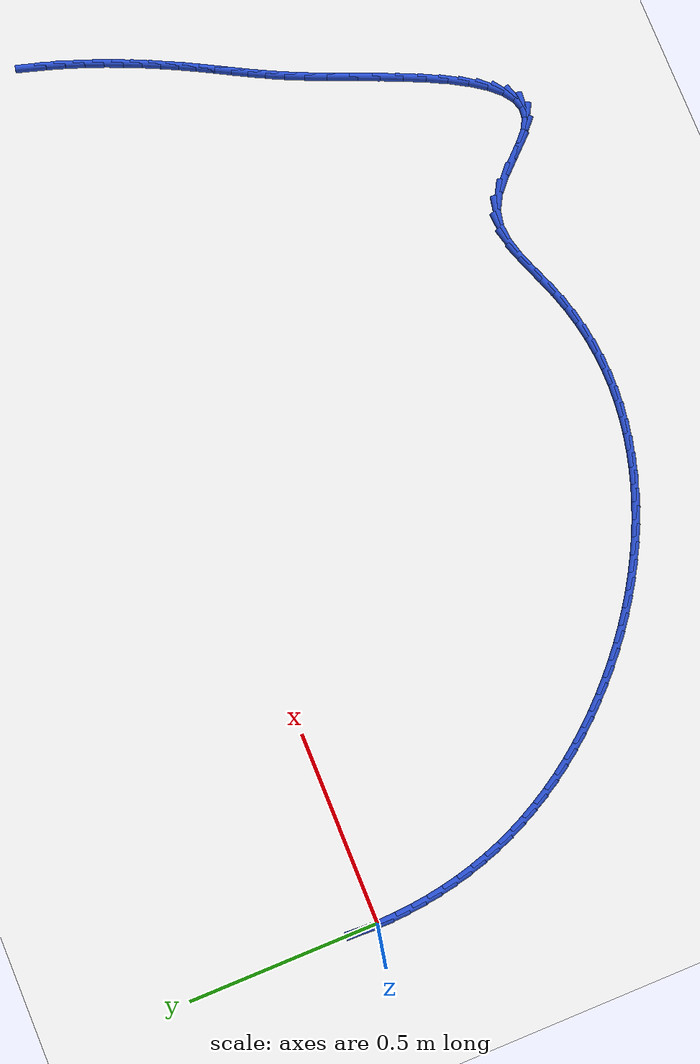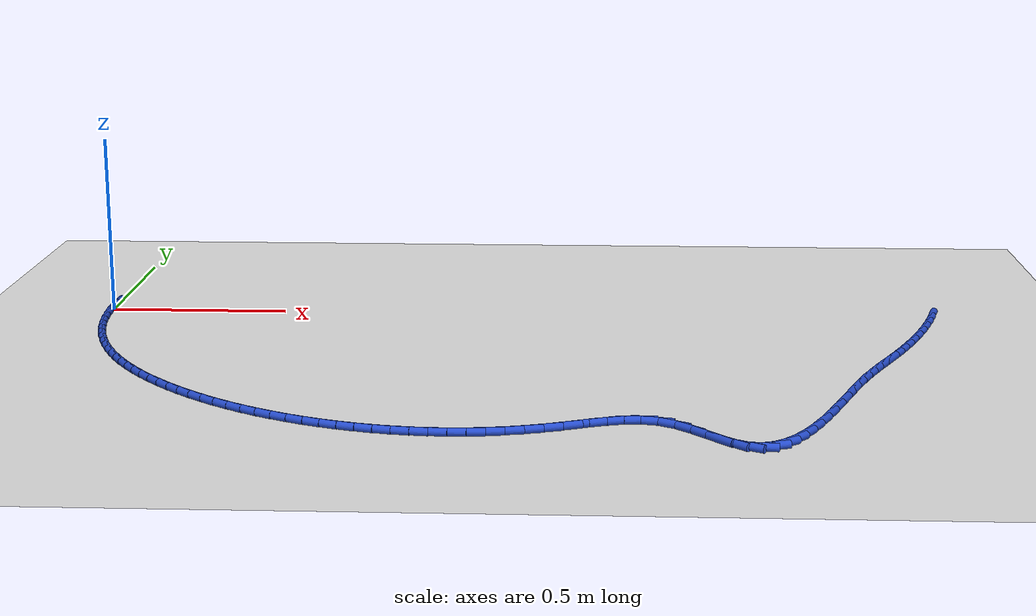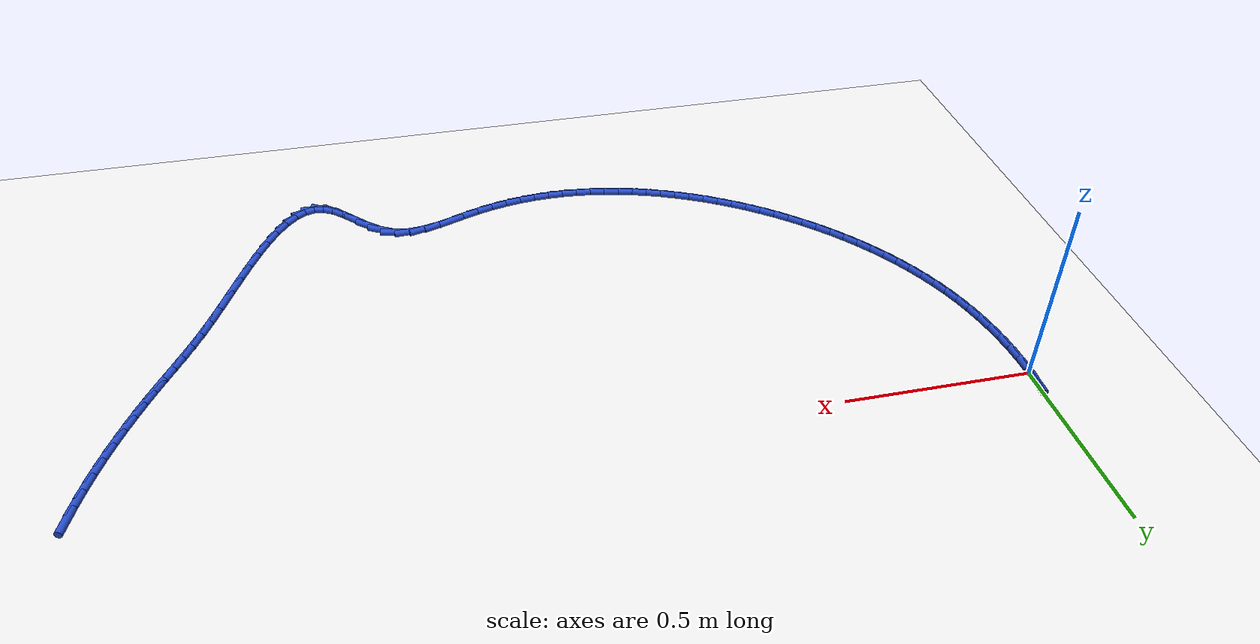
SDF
<sdf version="1.6">
 <world name="default">
  <model name="ground_plane">
   <static>1</static>
   <link name="link">
    <collision name="collision">
     <geometry><plane><normal>0 0 1</normal><size>100 100</size></plane></geometry>
     <surface><friction><ode><mu>100</mu><mu2>50</mu2></ode></friction></surface>
    </collision>
    <visual name="visual">
     <cast_shadows>0</cast_shadows>
     <geometry><plane><normal>0 0 1</normal><size>100 100</size></plane></geometry>
     <material>
      <script><uri>file://media/materials/scripts/gazebo.material</uri><name>Gazebo/WhiteGlow</name></script>
     </material>
    </visual>
   </link>
  </model>
  <model name="line">
   <link name="link_0">
    <pose>9.540979117872439e-18 -2.7755575615628914e-17 0.01 0 1.57 1.5550834401233358</pose>
    <collision name="collision">
     <geometry><cylinder><radius>0.01</radius><length>0.08</length></cylinder></geometry>
    </collision>
    <visual name="visual">
     <material>
      <script><name>Gazebo/Blue</name><uri>file://media/materials/scripts/gazebo.material</uri></script>
     </material>
     <geometry><cylinder><radius>0.01</radius><length>0.08</length></cylinder></geometry>
    </visual>
   </link>
   <link name="link_1">
    <pose>0.0007071253182191439 0.04499918677267556 0.01 0 1.57 1.5118088330511579</pose>
    <collision name="collision">
     <geometry><cylinder><radius>0.01</radius><length>0.08</length></cylinder></geometry>
    </collision>
    <visual name="visual">
     <material>
      <script><name>Gazebo/Blue</name><uri>file://media/materials/scripts/gazebo.material</uri></script>
     </material>
     <geometry><cylinder><radius>0.01</radius><length>0.08</length></cylinder></geometry>
    </visual>
   </link>
   <link name="link_88">
    <pose>2.3586757964761906 0.005335245022934011 0.01 0 1.57 1.2836216635699964</pose>
    <collision name="collision">
     <geometry><cylinder><radius>0.01</radius><length>0.08</length></cylinder></geometry>
    </collision>
    <visual name="visual">
     <material>
      <script><name>Gazebo/Blue</name><uri>file://media/materials/scripts/gazebo.material</uri></script>
     </material>
     <geometry><cylinder><radius>0.01</radius><length>0.08</length></cylinder></geometry>
    </visual>
   </link>
   <link name="link_89">
    <pose>2.344400832170204 -0.0429990133191447 0.01 0 1.57 1.252128991660815</pose>
    <collision name="collision">
     <geometry><cylinder><radius>0.01</radius><length>0.08</length></cylinder></geometry>
    </collision>
    <visual name="visual">
     <material>
      <script><name>Gazebo/Blue</name><uri>file://media/materials/scripts/gazebo.material</uri></script>
     </material>
     <geometry><cylinder><radius>0.01</radius><length>0.08</length></cylinder></geometry>
    </visual>
   </link>
   <link name="link_90">
    <pose>2.3285816671289457 -0.09094880310375003 0.01 0 1.57 1.22361754299838</pose>
    <collision name="collision">
     <geometry><cylinder><radius>0.01</radius><length>0.08</length></cylinder></geometry>
    </collision>
    <visual name="visual">
     <material>
      <script><name>Gazebo/Blue</name><uri>file://media/materials/scripts/gazebo.material</uri></script>
     </material>
     <geometry><cylinder><radius>0.01</radius><length>0.08</length></cylinder></geometry>
    </visual>
   </link>
   <link name="link_91">
    <pose>2.311451877210317 -0.13829028961050666 0.01 0 1.57 1.1976682334905395</pose>
    <collision name="collision">
     <geometry><cylinder><radius>0.01</radius><length>0.08</length></cylinder></geometry>
    </collision>
    <visual name="visual">
     <material>
      <script><name>Gazebo/Blue</name><uri>file://media/materials/scripts/gazebo.material</uri></script>
     </material>
     <geometry><cylinder><radius>0.01</radius><length>0.08</length></cylinder></geometry>
    </visual>
   </link>
   <link name="link_92">
    <pose>2.2932450382722225 -0.18479963811903863 0.01 0 1.57 1.1739186129750017</pose>
    <collision name="collision">
     <geometry><cylinder><radius>0.01</radius><length>0.08</length></cylinder></geometry>
    </collision>
    <visual name="visual">
     <material>
      <script><name>Gazebo/Blue</name><uri>file://media/materials/scripts/gazebo.material</uri></script>
     </material>
     <geometry><cylinder><radius>0.01</radius><length>0.08</length></cylinder></geometry>
    </visual>
   </link>
   <link name="link_93">
    <pose>2.2741947261725666 -0.2302530139089699 0.01 0 1.57 1.152052027311546</pose>
    <collision name="collision">
     <geometry><cylinder><radius>0.01</radius><length>0.08</length></cylinder></geometry>
    </collision>
    <visual name="visual">
     <material>
      <script><name>Gazebo/Blue</name><uri>file://media/materials/scripts/gazebo.material</uri></script>
     </material>
     <geometry><cylinder><radius>0.01</radius><length>0.08</length></cylinder></geometry>
    </visual>
   </link>
   <link name="link_94">
    <pose>2.254534516769252 -0.27442658225992533 0.01 0 1.57 1.131787435719408</pose>
    <collision name="collision">
     <geometry><cylinder><radius>0.01</radius><length>0.08</length></cylinder></geometry>
    </collision>
    <visual name="visual">
     <material>
      <script><name>Gazebo/Blue</name><uri>file://media/materials/scripts/gazebo.material</uri></script>
     </material>
     <geometry><cylinder><radius>0.01</radius><length>0.08</length></cylinder></geometry>
    </visual>
   </link>
   <link name="link_95">
    <pose>2.2344979859201826 -0.3170965084515271 0.01 0 1.57 1.1128695308786785</pose>
    <collision name="collision">
     <geometry><cylinder><radius>0.01</radius><length>0.08</length></cylinder></geometry>
    </collision>
    <visual name="visual">
     <material>
      <script><name>Gazebo/Blue</name><uri>file://media/materials/scripts/gazebo.material</uri></script>
     </material>
     <geometry><cylinder><radius>0.01</radius><length>0.08</length></cylinder></geometry>
    </visual>
   </link>
   <link name="link_96">
    <pose>2.214318709483262 -0.35803895776339995 0.01 0 1.57 1.0951727227376198</pose>
    <collision name="collision">
     <geometry><cylinder><radius>0.01</radius><length>0.08</length></cylinder></geometry>
    </collision>
    <visual name="visual">
     <material>
      <script><name>Gazebo/Blue</name><uri>file://media/materials/scripts/gazebo.material</uri></script>
     </material>
     <geometry><cylinder><radius>0.01</radius><length>0.08</length></cylinder></geometry>
    </visual>
   </link>
   <link name="link_97">
    <pose>2.1942235146462377 -0.39705414003828693 0.01 0 1.57 1.0815811158116941</pose>
    <collision name="collision">
     <geometry><cylinder><radius>0.01</radius><length>0.08</length></cylinder></geometry>
    </collision>
    <visual name="visual">
     <material>
      <script><name>Gazebo/Blue</name><uri>file://media/materials/scripts/gazebo.material</uri></script>
     </material>
     <geometry><cylinder><radius>0.01</radius><length>0.08</length></cylinder></geometry>
    </visual>
   </link>
   <link name="link_98">
    <pose>2.17427668631938 -0.4345213804053726 0.01 0 1.57 1.0761063480815933</pose>
    <collision name="collision">
     <geometry><cylinder><radius>0.01</radius><length>0.08</length></cylinder></geometry>
    </collision>
    <visual name="visual">
     <material>
      <script><name>Gazebo/Blue</name><uri>file://media/materials/scripts/gazebo.material</uri></script>
     </material>
     <geometry><cylinder><radius>0.01</radius><length>0.08</length></cylinder></geometry>
    </visual>
   </link>
   <link name="link_99">
    <pose>2.154375791689177 -0.47141399580852 0.01 0 1.57 1.079549148450456</pose>
    <collision name="collision">
     <geometry><cylinder><radius>0.01</radius><length>0.08</length></cylinder></geometry>
    </collision>
    <visual name="visual">
     <material>
      <script><name>Gazebo/Blue</name><uri>file://media/materials/scripts/gazebo.material</uri></script>
     </material>
     <geometry><cylinder><radius>0.01</radius><length>0.08</length></cylinder></geometry>
    </visual>
   </link>
   <link name="link_100">
    <pose>2.1344108140142874 -0.5087323236604061 0.01 0 1.57 1.0914395599258968</pose>
    <collision name="collision">
     <geometry><cylinder><radius>0.01</radius><length>0.08</length></cylinder></geometry>
    </collision>
    <visual name="visual">
     <material>
      <script><name>Gazebo/Blue</name><uri>file://media/materials/scripts/gazebo.material</uri></script>
     </material>
     <geometry><cylinder><radius>0.01</radius><length>0.08</length></cylinder></geometry>
    </visual>
   </link>
   <link name="link_101">
    <pose>2.1142717365533645 -0.5474767013737093 0.01 0 1.57 1.1103052088640963</pose>
    <collision name="collision">
     <geometry><cylinder><radius>0.01</radius><length>0.08</length></cylinder></geometry>
    </collision>
    <visual name="visual">
     <material>
      <script><name>Gazebo/Blue</name><uri>file://media/materials/scripts/gazebo.material</uri></script>
     </material>
     <geometry><cylinder><radius>0.01</radius><length>0.08</length></cylinder></geometry>
    </visual>
   </link>
   <link name="link_102">
    <pose>2.0938485425650675 -0.5886474663611084 0.01 0 1.57 1.1340740611851818</pose>
    <collision name="collision">
     <geometry><cylinder><radius>0.01</radius><length>0.08</length></cylinder></geometry>
    </collision>
    <visual name="visual">
     <material>
      <script><name>Gazebo/Blue</name><uri>file://media/materials/scripts/gazebo.material</uri></script>
     </material>
     <geometry><cylinder><radius>0.01</radius><length>0.08</length></cylinder></geometry>
    </visual>
   </link>
   <link name="link_103">
    <pose>2.07303121530805 -0.6332449560352809 0.01 0 1.57 1.1592076805965748</pose>
    <collision name="collision">
     <geometry><cylinder><radius>0.01</radius><length>0.08</length></cylinder></geometry>
    </collision>
    <visual name="visual">
     <material>
      <script><name>Gazebo/Blue</name><uri>file://media/materials/scripts/gazebo.material</uri></script>
     </material>
     <geometry><cylinder><radius>0.01</radius><length>0.08</length></cylinder></geometry>
    </visual>
   </link>
   <link name="link_104">
    <pose>2.0517171080607213 -0.6820721478011329 0.01 0 1.57 1.175214959926384</pose>
    <collision name="collision">
     <geometry><cylinder><radius>0.01</radius><length>0.08</length></cylinder></geometry>
    </collision>
    <visual name="visual">
     <material>
      <script><name>Gazebo/Blue</name><uri>file://media/materials/scripts/gazebo.material</uri></script>
     </material>
     <geometry><cylinder><radius>0.01</radius><length>0.08</length></cylinder></geometry>
    </visual>
   </link>
   <link name="link_105">
    <pose>2.0298603419196395 -0.7344118471497724 0.01 0 1.57 1.1800782403941363</pose>
    <collision name="collision">
     <geometry><cylinder><radius>0.01</radius><length>0.08</length></cylinder></geometry>
    </collision>
    <visual name="visual">
     <material>
      <script><name>Gazebo/Blue</name><uri>file://media/materials/scripts/gazebo.material</uri></script>
     </material>
     <geometry><cylinder><radius>0.01</radius><length>0.08</length></cylinder></geometry>
    </visual>
   </link>
   <link name="link_106">
    <pose>2.0074414096894606 -0.788840657867224 0.01 0 1.57 1.1752934486480389</pose>
    <collision name="collision">
     <geometry><cylinder><radius>0.01</radius><length>0.08</length></cylinder></geometry>
    </collision>
    <visual name="visual">
     <material>
      <script><name>Gazebo/Blue</name><uri>file://media/materials/scripts/gazebo.material</uri></script>
     </material>
     <geometry><cylinder><radius>0.01</radius><length>0.08</length></cylinder></geometry>
    </visual>
   </link>
   <link name="link_107">
    <pose>1.9844409498078148 -0.8439312838687203 0.01 0 1.57 1.1609520055146196</pose>
    <collision name="collision">
     <geometry><cylinder><radius>0.01</radius><length>0.08</length></cylinder></geometry>
    </collision>
    <visual name="visual">
     <material>
      <script><name>Gazebo/Blue</name><uri>file://media/materials/scripts/gazebo.material</uri></script>
     </material>
     <geometry><cylinder><radius>0.01</radius><length>0.08</length></cylinder></geometry>
    </visual>
   </link>
   <link name="link_108">
    <pose>1.960839600712333 -0.8982564290694939 0.01 0 1.57 1.1358533674712168</pose>
    <collision name="collision">
     <geometry><cylinder><radius>0.01</radius><length>0.08</length></cylinder></geometry>
    </collision>
    <visual name="visual">
     <material>
      <script><name>Gazebo/Blue</name><uri>file://media/materials/scripts/gazebo.material</uri></script>
     </material>
     <geometry><cylinder><radius>0.01</radius><length>0.08</length></cylinder></geometry>
    </visual>
   </link>
   <link name="link_109">
    <pose>1.9366180008406446 -0.9503887973847767 0.01 0 1.57 1.097220659832309</pose>
    <collision name="collision">
     <geometry><cylinder><radius>0.01</radius><length>0.08</length></cylinder></geometry>
    </collision>
    <visual name="visual">
     <material>
      <script><name>Gazebo/Blue</name><uri>file://media/materials/scripts/gazebo.material</uri></script>
     </material>
     <geometry><cylinder><radius>0.01</radius><length>0.08</length></cylinder></geometry>
    </visual>
   </link>
   <link name="link_110">
    <pose>1.9117567886303801 -0.9989010927298025 0.01 0 1.57 1.0398831380043618</pose>
    <collision name="collision">
     <geometry><cylinder><radius>0.01</radius><length>0.08</length></cylinder></geometry>
    </collision>
    <visual name="visual">
     <material>
      <script><name>Gazebo/Blue</name><uri>file://media/materials/scripts/gazebo.material</uri></script>
     </material>
     <geometry><cylinder><radius>0.01</radius><length>0.08</length></cylinder></geometry>
    </visual>
   </link>
   <link name="link_111">
    <pose>1.8862366025191704 -1.0423660190198016 0.01 0 1.57 0.9545518382829045</pose>
    <collision name="collision">
     <geometry><cylinder><radius>0.01</radius><length>0.08</length></cylinder></geometry>
    </collision>
    <visual name="visual">
     <material>
      <script><name>Gazebo/Blue</name><uri>file://media/materials/scripts/gazebo.material</uri></script>
     </material>
     <geometry><cylinder><radius>0.01</radius><length>0.08</length></cylinder></geometry>
    </visual>
   </link>
   <link name="link_112">
    <pose>1.8600380809446448 -1.0793562801700072 0.01 0 1.57 0.8245333058964786</pose>
    <collision name="collision">
     <geometry><cylinder><radius>0.01</radius><length>0.08</length></cylinder></geometry>
    </collision>
    <visual name="visual">
     <material>
      <script><name>Gazebo/Blue</name><uri>file://media/materials/scripts/gazebo.material</uri></script>
     </material>
     <geometry><cylinder><radius>0.01</radius><length>0.08</length></cylinder></geometry>
    </visual>
   </link>
   <link name="link_113">
    <pose>1.833141862344434 -1.1084445800956524 0.01 0 1.57 0.6210948208969689</pose>
    <collision name="collision">
     <geometry><cylinder><radius>0.01</radius><length>0.08</length></cylinder></geometry>
    </collision>
    <visual name="visual">
     <material>
      <script><name>Gazebo/Blue</name><uri>file://media/materials/scripts/gazebo.material</uri></script>
     </material>
     <geometry><cylinder><radius>0.01</radius><length>0.08</length></cylinder></geometry>
    </visual>
   </link>
   <link name="link_114">
    <pose>1.8055285851561684 -1.1282036227119694 0.01 0 1.57 0.3074803152077454</pose>
    <collision name="collision">
     <geometry><cylinder><radius>0.01</radius><length>0.08</length></cylinder></geometry>
    </collision>
    <visual name="visual">
     <material>
      <script><name>Gazebo/Blue</name><uri>file://media/materials/scripts/gazebo.material</uri></script>
     </material>
     <geometry><cylinder><radius>0.01</radius><length>0.08</length></cylinder></geometry>
    </visual>
   </link>
   <link name="link_115">
    <pose>1.7771788878174772 -1.13720611193419 0.01 0 1.57 -0.10887230418914469</pose>
    <collision name="collision">
     <geometry><cylinder><radius>0.01</radius><length>0.08</length></cylinder></geometry>
    </collision>
    <visual name="visual">
     <material>
      <script><name>Gazebo/Blue</name><uri>file://media/materials/scripts/gazebo.material</uri></script>
     </material>
     <geometry><cylinder><radius>0.01</radius><length>0.08</length></cylinder></geometry>
    </visual>
   </link>
   <link name="link_116">
    <pose>1.748073408765992 -1.134024751677547 0.01 0 1.57 -0.5076331139860487</pose>
    <collision name="collision">
     <geometry><cylinder><radius>0.01</radius><length>0.08</length></cylinder></geometry>
    </collision>
    <visual name="visual">
     <material>
      <script><name>Gazebo/Blue</name><uri>file://media/materials/scripts/gazebo.material</uri></script>
     </material>
     <geometry><cylinder><radius>0.01</radius><length>0.08</length></cylinder></geometry>
    </visual>
   </link>
   <link name="link_117">
    <pose>1.7181851686681446 -1.1173992574431226 0.01 0 1.57 -0.7367854710851709</pose>
    <collision name="collision">
     <geometry><cylinder><radius>0.01</radius><length>0.08</length></cylinder></geometry>
    </collision>
    <visual name="visual">
     <material>
      <script><name>Gazebo/Blue</name><uri>file://media/materials/scripts/gazebo.material</uri></script>
     </material>
     <geometry><cylinder><radius>0.01</radius><length>0.08</length></cylinder></geometry>
    </visual>
   </link>
   <link name="link_118">
    <pose>1.6873347503976759 -1.0894113822968092 0.01 0 1.57 -0.8162944459647538</pose>
    <collision name="collision">
     <geometry><cylinder><radius>0.01</radius><length>0.08</length></cylinder></geometry>
    </collision>
    <visual name="visual">
     <material>
      <script><name>Gazebo/Blue</name><uri>file://media/materials/scripts/gazebo.material</uri></script>
     </material>
     <geometry><cylinder><radius>0.01</radius><length>0.08</length></cylinder></geometry>
    </visual>
   </link>
   <link name="link_119">
    <pose>1.6552019692937066 -1.0552290587898774 0.01 0 1.57 -0.8050443434836526</pose>
    <collision name="collision">
     <geometry><cylinder><radius>0.01</radius><length>0.08</length></cylinder></geometry>
    </collision>
    <visual name="visual">
     <material>
      <script><name>Gazebo/Blue</name><uri>file://media/materials/scripts/gazebo.material</uri></script>
     </material>
     <geometry><cylinder><radius>0.01</radius><length>0.08</length></cylinder></geometry>
    </visual>
   </link>
   <link name="link_120">
    <pose>1.621461361618239 -1.0201359576624107 0.01 0 1.57 -0.710925760095772</pose>
    <collision name="collision">
     <geometry><cylinder><radius>0.01</radius><length>0.08</length></cylinder></geometry>
    </collision>
    <visual name="visual">
     <material>
      <script><name>Gazebo/Blue</name><uri>file://media/materials/scripts/gazebo.material</uri></script>
     </material>
     <geometry><cylinder><radius>0.01</radius><length>0.08</length></cylinder></geometry>
    </visual>
   </link>
   <link name="link_121">
    <pose>1.5857874636332754 -0.9894157496544939 0.01 0 1.57 -0.5069071161262191</pose>
    <collision name="collision">
     <geometry><cylinder><radius>0.01</radius><length>0.08</length></cylinder></geometry>
    </collision>
    <visual name="visual">
     <material>
      <script><name>Gazebo/Blue</name><uri>file://media/materials/scripts/gazebo.material</uri></script>
     </material>
     <geometry><cylinder><radius>0.01</radius><length>0.08</length></cylinder></geometry>
    </visual>
   </link>
   <link name="link_122">
    <pose>1.547854862654067 -0.9683515819845179 0.01 0 1.57 -0.1922941177773128</pose>
    <collision name="collision">
     <geometry><cylinder><radius>0.01</radius><length>0.08</length></cylinder></geometry>
    </collision>
    <visual name="visual">
     <material>
      <script><name>Gazebo/Blue</name><uri>file://media/materials/scripts/gazebo.material</uri></script>
     </material>
     <geometry><cylinder><radius>0.01</radius><length>0.08</length></cylinder></geometry>
    </visual>
   </link>
   <link name="link_123">
    <pose>1.5075069274967796 -0.9604958445800025 0.01 0 1.57 0.07817731863065544</pose>
    <collision name="collision">
     <geometry><cylinder><radius>0.01</radius><length>0.08</length></cylinder></geometry>
    </collision>
    <visual name="visual">
     <material>
      <script><name>Gazebo/Blue</name><uri>file://media/materials/scripts/gazebo.material</uri></script>
     </material>
     <geometry><cylinder><radius>0.01</radius><length>0.08</length></cylinder></geometry>
    </visual>
   </link>
   <link name="link_124">
    <pose>1.4651317222945277 -0.9638153899370432 0.01 0 1.57 0.25269919657112283</pose>
    <collision name="collision">
     <geometry><cylinder><radius>0.01</radius><length>0.08</length></cylinder></geometry>
    </collision>
    <visual name="visual">
     <material>
      <script><name>Gazebo/Blue</name><uri>file://media/materials/scripts/gazebo.material</uri></script>
     </material>
     <geometry><cylinder><radius>0.01</radius><length>0.08</length></cylinder></geometry>
    </visual>
   </link>
   <link name="link_125">
    <pose>1.4212269847136811 -0.9751524314990997 0.01 0 1.57 0.3459416472000235</pose>
    <collision name="collision">
     <geometry><cylinder><radius>0.01</radius><length>0.08</length></cylinder></geometry>
    </collision>
    <visual name="visual">
     <material>
      <script><name>Gazebo/Blue</name><uri>file://media/materials/scripts/gazebo.material</uri></script>
     </material>
     <geometry><cylinder><radius>0.01</radius><length>0.08</length></cylinder></geometry>
    </visual>
   </link>
   <link name="link_126">
    <pose>1.376290452420607 -0.9913491827096295 0.01 0 1.57 0.3750046065148913</pose>
    <collision name="collision">
     <geometry><cylinder><radius>0.01</radius><length>0.08</length></cylinder></geometry>
    </collision>
    <visual name="visual">
     <material>
      <script><name>Gazebo/Blue</name><uri>file://media/materials/scripts/gazebo.material</uri></script>
     </material>
     <geometry><cylinder><radius>0.01</radius><length>0.08</length></cylinder></geometry>
    </visual>
   </link>
   <link name="link_127">
    <pose>1.3308198630816765 -1.009247857012092 0.01 0 1.57 0.34781542419087935</pose>
    <collision name="collision">
     <geometry><cylinder><radius>0.01</radius><length>0.08</length></cylinder></geometry>
    </collision>
    <visual name="visual">
     <material>
      <script><name>Gazebo/Blue</name><uri>file://media/materials/scripts/gazebo.material</uri></script>
     </material>
     <geometry><cylinder><radius>0.01</radius><length>0.08</length></cylinder></geometry>
    </visual>
   </link>
   <link name="link_128">
    <pose>1.285304015192878 -1.025749846237337 0.01 0 1.57 0.2900699863198498</pose>
    <collision name="collision">
     <geometry><cylinder><radius>0.01</radius><length>0.08</length></cylinder></geometry>
    </collision>
    <visual name="visual">
     <material>
      <script><name>Gazebo/Blue</name><uri>file://media/materials/scripts/gazebo.material</uri></script>
     </material>
     <geometry><cylinder><radius>0.01</radius><length>0.08</length></cylinder></geometry>
    </visual>
   </link>
   <link name="link_129">
    <pose>1.2400028276651585 -1.039271752708278 0.01 0 1.57 0.2302499941510786</pose>
    <collision name="collision">
     <geometry><cylinder><radius>0.01</radius><length>0.08</length></cylinder></geometry>
    </collision>
    <visual name="visual">
     <material>
      <script><name>Gazebo/Blue</name><uri>file://media/materials/scripts/gazebo.material</uri></script>
     </material>
     <geometry><cylinder><radius>0.01</radius><length>0.08</length></cylinder></geometry>
    </visual>
   </link>
   <link name="link_130">
    <pose>1.1949336078128656 -1.0498362968146573 0.01 0 1.57 0.17025188518578221</pose>
    <collision name="collision">
     <geometry><cylinder><radius>0.01</radius><length>0.08</length></cylinder></geometry>
    </collision>
    <visual name="visual">
     <material>
      <script><name>Gazebo/Blue</name><uri>file://media/materials/scripts/gazebo.material</uri></script>
     </material>
     <geometry><cylinder><radius>0.01</radius><length>0.08</length></cylinder></geometry>
    </visual>
   </link>
   <link name="link_131">
    <pose>1.150101974454506 -1.0575435782001659 0.01 0 1.57 0.11056524913342555</pose>
    <collision name="collision">
     <geometry><cylinder><radius>0.01</radius><length>0.08</length></cylinder></geometry>
    </collision>
    <visual name="visual">
     <material>
      <script><name>Gazebo/Blue</name><uri>file://media/materials/scripts/gazebo.material</uri></script>
     </material>
     <geometry><cylinder><radius>0.01</radius><length>0.08</length></cylinder></geometry>
    </visual>
   </link>
   <link name="link_132">
    <pose>1.1055135464085863 -1.0624936965084941 0.01 0 1.57 0.05166969651844424</pose>
    <collision name="collision">
     <geometry><cylinder><radius>0.01</radius><length>0.08</length></cylinder></geometry>
    </collision>
    <visual name="visual">
     <material>
      <script><name>Gazebo/Blue</name><uri>file://media/materials/scripts/gazebo.material</uri></script>
     </material>
     <geometry><cylinder><radius>0.01</radius><length>0.08</length></cylinder></geometry>
    </visual>
   </link>
   <link name="link_133">
    <pose>1.0611739424936135 -1.0647867513833336 0.01 0 1.57 -0.00598627195045169</pose>
    <collision name="collision">
     <geometry><cylinder><radius>0.01</radius><length>0.08</length></cylinder></geometry>
    </collision>
    <visual name="visual">
     <material>
      <script><name>Gazebo/Blue</name><uri>file://media/materials/scripts/gazebo.material</uri></script>
     </material>
     <geometry><cylinder><radius>0.01</radius><length>0.08</length></cylinder></geometry>
    </visual>
   </link>
   <link name="link_134">
    <pose>1.0170887815280936 -1.0645228424683753 0.01 0 1.57 -0.06200295418543772</pose>
    <collision name="collision">
     <geometry><cylinder><radius>0.01</radius><length>0.08</length></cylinder></geometry>
    </collision>
    <visual name="visual">
     <material>
      <script><name>Gazebo/Blue</name><uri>file://media/materials/scripts/gazebo.material</uri></script>
     </material>
     <geometry><cylinder><radius>0.01</radius><length>0.08</length></cylinder></geometry>
    </visual>
   </link>
   <link name="link_135">
    <pose>0.9732636823305332 -1.0618020694073107 0.01 0 1.57 -0.11604209281798042</pose>
    <collision name="collision">
     <geometry><cylinder><radius>0.01</radius><length>0.08</length></cylinder></geometry>
    </collision>
    <visual name="visual">
     <material>
      <script><name>Gazebo/Blue</name><uri>file://media/materials/scripts/gazebo.material</uri></script>
     </material>
     <geometry><cylinder><radius>0.01</radius><length>0.08</length></cylinder></geometry>
    </visual>
   </link>
   <link name="link_136">
    <pose>0.9297042637194378 -1.05672453184383 0.01 0 1.57 -0.16783378851136307</pose>
    <collision name="collision">
     <geometry><cylinder><radius>0.01</radius><length>0.08</length></cylinder></geometry>
    </collision>
    <visual name="visual">
     <material>
      <script><name>Gazebo/Blue</name><uri>file://media/materials/scripts/gazebo.material</uri></script>
     </material>
     <geometry><cylinder><radius>0.01</radius><length>0.08</length></cylinder></geometry>
    </visual>
   </link>
   <link name="link_137">
    <pose>0.8864161445133155 -1.0493903294216247 0.01 0 1.57 -0.2172127889429104</pose>
    <collision name="collision">
     <geometry><cylinder><radius>0.01</radius><length>0.08</length></cylinder></geometry>
    </collision>
    <visual name="visual">
     <material>
      <script><name>Gazebo/Blue</name><uri>file://media/materials/scripts/gazebo.material</uri></script>
     </material>
     <geometry><cylinder><radius>0.01</radius><length>0.08</length></cylinder></geometry>
    </visual>
   </link>
   <link name="link_138">
    <pose>0.8434072776040783 -1.0398985026121863 0.01 0 1.57 -0.2645844963397612</pose>
    <collision name="collision">
     <geometry><cylinder><radius>0.01</radius><length>0.08</length></cylinder></geometry>
    </collision>
    <visual name="visual">
     <material>
      <script><name>Gazebo/Blue</name><uri>file://media/materials/scripts/gazebo.material</uri></script>
     </material>
     <geometry><cylinder><radius>0.01</radius><length>0.08</length></cylinder></geometry>
    </visual>
   </link>
   <link name="link_139">
    <pose>0.800719348427887 -1.0283327844964982 0.01 0 1.57 -0.3103763805216823</pose>
    <collision name="collision">
     <geometry><cylinder><radius>0.01</radius><length>0.08</length></cylinder></geometry>
    </collision>
    <visual name="visual">
     <material>
      <script><name>Gazebo/Blue</name><uri>file://media/materials/scripts/gazebo.material</uri></script>
     </material>
     <geometry><cylinder><radius>0.01</radius><length>0.08</length></cylinder></geometry>
    </visual>
   </link>
   <link name="link_140">
    <pose>0.7584194132913415 -1.0147653951840212 0.01 0 1.57 -0.354689788335446</pose>
    <collision name="collision">
     <geometry><cylinder><radius>0.01</radius><length>0.08</length></cylinder></geometry>
    </collision>
    <visual name="visual">
     <material>
      <script><name>Gazebo/Blue</name><uri>file://media/materials/scripts/gazebo.material</uri></script>
     </material>
     <geometry><cylinder><radius>0.01</radius><length>0.08</length></cylinder></geometry>
    </visual>
   </link>
   <link name="link_141">
    <pose>0.7165751475841282 -0.9992682738523517 0.01 0 1.57 -0.3976306123874729</pose>
    <collision name="collision">
     <geometry><cylinder><radius>0.01</radius><length>0.08</length></cylinder></geometry>
    </collision>
    <visual name="visual">
     <material>
      <script><name>Gazebo/Blue</name><uri>file://media/materials/scripts/gazebo.material</uri></script>
     </material>
     <geometry><cylinder><radius>0.01</radius><length>0.08</length></cylinder></geometry>
    </visual>
   </link>
   <link name="link_142">
    <pose>0.6752542266959327 -0.981913359679085 0.01 0 1.57 -0.4393149258305776</pose>
    <collision name="collision">
     <geometry><cylinder><radius>0.01</radius><length>0.08</length></cylinder></geometry>
    </collision>
    <visual name="visual">
     <material>
      <script><name>Gazebo/Blue</name><uri>file://media/materials/scripts/gazebo.material</uri></script>
     </material>
     <geometry><cylinder><radius>0.01</radius><length>0.08</length></cylinder></geometry>
    </visual>
   </link>
   <link name="link_143">
    <pose>0.6345243260164426 -0.9627725918418181 0.01 0 1.57 -0.4798660554002749</pose>
    <collision name="collision">
     <geometry><cylinder><radius>0.01</radius><length>0.08</length></cylinder></geometry>
    </collision>
    <visual name="visual">
     <material>
      <script><name>Gazebo/Blue</name><uri>file://media/materials/scripts/gazebo.material</uri></script>
     </material>
     <geometry><cylinder><radius>0.01</radius><length>0.08</length></cylinder></geometry>
    </visual>
   </link>
   <link name="link_144">
    <pose>0.5944531209353435 -0.9419179095181467 0.01 0 1.57 -0.5194123072626243</pose>
    <collision name="collision">
     <geometry><cylinder><radius>0.01</radius><length>0.08</length></cylinder></geometry>
    </collision>
    <visual name="visual">
     <material>
      <script><name>Gazebo/Blue</name><uri>file://media/materials/scripts/gazebo.material</uri></script>
     </material>
     <geometry><cylinder><radius>0.01</radius><length>0.08</length></cylinder></geometry>
    </visual>
   </link>
   <link name="link_145">
    <pose>0.5551082868423219 -0.9194212518856667 0.01 0 1.57 -0.5580852775460803</pose>
    <collision name="collision">
     <geometry><cylinder><radius>0.01</radius><length>0.08</length></cylinder></geometry>
    </collision>
    <visual name="visual">
     <material>
      <script><name>Gazebo/Blue</name><uri>file://media/materials/scripts/gazebo.material</uri></script>
     </material>
     <geometry><cylinder><radius>0.01</radius><length>0.08</length></cylinder></geometry>
    </visual>
   </link>
   <link name="link_146">
    <pose>0.5165574991270642 -0.8953545581219747 0.01 0 1.57 -0.5960186685964389</pose>
    <collision name="collision">
     <geometry><cylinder><radius>0.01</radius><length>0.08</length></cylinder></geometry>
    </collision>
    <visual name="visual">
     <material>
      <script><name>Gazebo/Blue</name><uri>file://media/materials/scripts/gazebo.material</uri></script>
     </material>
     <geometry><cylinder><radius>0.01</radius><length>0.08</length></cylinder></geometry>
    </visual>
   </link>
   <link name="link_147">
    <pose>0.4788684331792553 -0.8697897674046655 0.01 0 1.57 -0.6333475304598913</pose>
    <collision name="collision">
     <geometry><cylinder><radius>0.01</radius><length>0.08</length></cylinder></geometry>
    </collision>
    <visual name="visual">
     <material>
      <script><name>Gazebo/Blue</name><uri>file://media/materials/scripts/gazebo.material</uri></script>
     </material>
     <geometry><cylinder><radius>0.01</radius><length>0.08</length></cylinder></geometry>
    </visual>
   </link>
   <link name="link_148">
    <pose>0.44210876438858354 -0.8427988189113368 0.01 0 1.57 -0.6702078510841295</pose>
    <collision name="collision">
     <geometry><cylinder><radius>0.01</radius><length>0.08</length></cylinder></geometry>
    </collision>
    <visual name="visual">
     <material>
      <script><name>Gazebo/Blue</name><uri>file://media/materials/scripts/gazebo.material</uri></script>
     </material>
     <geometry><cylinder><radius>0.01</radius><length>0.08</length></cylinder></geometry>
    </visual>
   </link>
   <link name="link_149">
    <pose>0.4063461681447343 -0.814453651819584 0.01 0 1.57 -0.7067364253834683</pose>
    <collision name="collision">
     <geometry><cylinder><radius>0.01</radius><length>0.08</length></cylinder></geometry>
    </collision>
    <visual name="visual">
     <material>
      <script><name>Gazebo/Blue</name><uri>file://media/materials/scripts/gazebo.material</uri></script>
     </material>
     <geometry><cylinder><radius>0.01</radius><length>0.08</length></cylinder></geometry>
    </visual>
   </link>
   <link name="link_150">
    <pose>0.3716483198373938 -0.7848262053070031 0.01 0 1.57 -0.7430709406189794</pose>
    <collision name="collision">
     <geometry><cylinder><radius>0.01</radius><length>0.08</length></cylinder></geometry>
    </collision>
    <visual name="visual">
     <material>
      <script><name>Gazebo/Blue</name><uri>file://media/materials/scripts/gazebo.material</uri></script>
     </material>
     <geometry><cylinder><radius>0.01</radius><length>0.08</length></cylinder></geometry>
    </visual>
   </link>
   <link name="link_151">
    <pose>0.3380828948562485 -0.7539884185511903 0.01 0 1.57 -0.7793502221149875</pose>
    <collision name="collision">
     <geometry><cylinder><radius>0.01</radius><length>0.08</length></cylinder></geometry>
    </collision>
    <visual name="visual">
     <material>
      <script><name>Gazebo/Blue</name><uri>file://media/materials/scripts/gazebo.material</uri></script>
     </material>
     <geometry><cylinder><radius>0.01</radius><length>0.08</length></cylinder></geometry>
    </visual>
   </link>
   <link name="link_152">
    <pose>0.3057175685909845 -0.7220122307297415 0.01 0 1.57 -0.8157145882430757</pose>
    <collision name="collision">
     <geometry><cylinder><radius>0.01</radius><length>0.08</length></cylinder></geometry>
    </collision>
    <visual name="visual">
     <material>
      <script><name>Gazebo/Blue</name><uri>file://media/materials/scripts/gazebo.material</uri></script>
     </material>
     <geometry><cylinder><radius>0.01</radius><length>0.08</length></cylinder></geometry>
    </visual>
   </link>
   <link name="link_153">
    <pose>0.27462001643128764 -0.6889695810202523 0.01 0 1.57 -0.8523285863948651</pose>
    <collision name="collision">
     <geometry><cylinder><radius>0.01</radius><length>0.08</length></cylinder></geometry>
    </collision>
    <visual name="visual">
     <material>
      <script><name>Gazebo/Blue</name><uri>file://media/materials/scripts/gazebo.material</uri></script>
     </material>
     <geometry><cylinder><radius>0.01</radius><length>0.08</length></cylinder></geometry>
    </visual>
   </link>
   <link name="link_154">
    <pose>0.24485797236484633 -0.6549309424417827 0.01 0 1.57 -0.8897337396380558</pose>
    <collision name="collision">
     <geometry><cylinder><radius>0.01</radius><length>0.08</length></cylinder></geometry>
    </collision>
    <visual name="visual">
     <material>
      <script><name>Gazebo/Blue</name><uri>file://media/materials/scripts/gazebo.material</uri></script>
     </material>
     <geometry><cylinder><radius>0.01</radius><length>0.08</length></cylinder></geometry>
    </visual>
   </link>
   <link name="link_155">
    <pose>0.21650025793792255 -0.6199395766193836 0.01 0 1.57 -0.9283656251054418</pose>
    <collision name="collision">
     <geometry><cylinder><radius>0.01</radius><length>0.08</length></cylinder></geometry>
    </collision>
    <visual name="visual">
     <material>
      <script><name>Gazebo/Blue</name><uri>file://media/materials/scripts/gazebo.material</uri></script>
     </material>
     <geometry><cylinder><radius>0.01</radius><length>0.08</length></cylinder></geometry>
    </visual>
   </link>
   <link name="link_156">
    <pose>0.18961665476516218 -0.5840147236682474 0.01 0 1.57 -0.9682836092752466</pose>
    <collision name="collision">
     <geometry><cylinder><radius>0.01</radius><length>0.08</length></cylinder></geometry>
    </collision>
    <visual name="visual">
     <material>
      <script><name>Gazebo/Blue</name><uri>file://media/materials/scripts/gazebo.material</uri></script>
     </material>
     <geometry><cylinder><radius>0.01</radius><length>0.08</length></cylinder></geometry>
    </visual>
   </link>
   <link name="link_157">
    <pose>0.16427697743684322 -0.5471747986326763 0.01 0 1.57 -1.0095227609310535</pose>
    <collision name="collision">
     <geometry><cylinder><radius>0.01</radius><length>0.08</length></cylinder></geometry>
    </collision>
    <visual name="visual">
     <material>
      <script><name>Gazebo/Blue</name><uri>file://media/materials/scripts/gazebo.material</uri></script>
     </material>
     <geometry><cylinder><radius>0.01</radius><length>0.08</length></cylinder></geometry>
    </visual>
   </link>
   <link name="link_158">
    <pose>0.1405510405432432 -0.5094382165569709 0.01 0 1.57 -1.0521038675251917</pose>
    <collision name="collision">
     <geometry><cylinder><radius>0.01</radius><length>0.08</length></cylinder></geometry>
    </collision>
    <visual name="visual">
     <material>
      <script><name>Gazebo/Blue</name><uri>file://media/materials/scripts/gazebo.material</uri></script>
     </material>
     <geometry><cylinder><radius>0.01</radius><length>0.08</length></cylinder></geometry>
    </visual>
   </link>
   <link name="link_159">
    <pose>0.11850865867464107 -0.47082339248543426 0.01 0 1.57 -1.0960307536422815</pose>
    <collision name="collision">
     <geometry><cylinder><radius>0.01</radius><length>0.08</length></cylinder></geometry>
    </collision>
    <visual name="visual">
     <material>
      <script><name>Gazebo/Blue</name><uri>file://media/materials/scripts/gazebo.material</uri></script>
     </material>
     <geometry><cylinder><radius>0.01</radius><length>0.08</length></cylinder></geometry>
    </visual>
   </link>
   <link name="link_160">
    <pose>0.09821964642131446 -0.43134874146236735 0.01 0 1.57 -1.1412875854462197</pose>
    <collision name="collision">
     <geometry><cylinder><radius>0.01</radius><length>0.08</length></cylinder></geometry>
    </collision>
    <visual name="visual">
     <material>
      <script><name>Gazebo/Blue</name><uri>file://media/materials/scripts/gazebo.material</uri></script>
     </material>
     <geometry><cylinder><radius>0.01</radius><length>0.08</length></cylinder></geometry>
    </visual>
   </link>
   <link name="link_161">
    <pose>0.07975381837354137 -0.3910326785320716 0.01 0 1.57 -1.187828895075791</pose>
    <collision name="collision">
     <geometry><cylinder><radius>0.01</radius><length>0.08</length></cylinder></geometry>
    </collision>
    <visual name="visual">
     <material>
      <script><name>Gazebo/Blue</name><uri>file://media/materials/scripts/gazebo.material</uri></script>
     </material>
     <geometry><cylinder><radius>0.01</radius><length>0.08</length></cylinder></geometry>
    </visual>
   </link>
   <link name="link_162">
    <pose>0.06318073072175871 -0.3498938594701129 0.01 0 1.57 -1.2348893807966823</pose>
    <collision name="collision">
     <geometry><cylinder><radius>0.01</radius><length>0.08</length></cylinder></geometry>
    </collision>
    <visual name="visual">
     <material>
      <script><name>Gazebo/Blue</name><uri>file://media/materials/scripts/gazebo.material</uri></script>
     </material>
     <geometry><cylinder><radius>0.01</radius><length>0.08</length></cylinder></geometry>
    </visual>
   </link>
   <link name="link_163">
    <pose>0.048544972394158316 -0.3079742001305943 0.01 0 1.57 -1.2811836321601968</pose>
    <collision name="collision">
     <geometry><cylinder><radius>0.01</radius><length>0.08</length></cylinder></geometry>
    </collision>
    <visual name="visual">
     <material>
      <script><name>Gazebo/Blue</name><uri>file://media/materials/scripts/gazebo.material</uri></script>
     </material>
     <geometry><cylinder><radius>0.01</radius><length>0.08</length></cylinder></geometry>
    </visual>
   </link>
   <link name="link_164">
    <pose>0.03584570731764877 -0.2653579353486583 0.01 0 1.57 -1.326636854341042</pose>
    <collision name="collision">
     <geometry><cylinder><radius>0.01</radius><length>0.08</length></cylinder></geometry>
    </collision>
    <visual name="visual">
     <material>
      <script><name>Gazebo/Blue</name><uri>file://media/materials/scripts/gazebo.material</uri></script>
     </material>
     <geometry><cylinder><radius>0.01</radius><length>0.08</length></cylinder></geometry>
    </visual>
   </link>
   <link name="link_165">
    <pose>0.02507728415059596 -0.22213378597490677 0.01 0 1.57 -1.3713228550975172</pose>
    <collision name="collision">
     <geometry><cylinder><radius>0.01</radius><length>0.08</length></cylinder></geometry>
    </collision>
    <visual name="visual">
     <material>
      <script><name>Gazebo/Blue</name><uri>file://media/materials/scripts/gazebo.material</uri></script>
     </material>
     <geometry><cylinder><radius>0.01</radius><length>0.08</length></cylinder></geometry>
    </visual>
   </link>
   <link name="link_166">
    <pose>0.016234051551366094 -0.17839047285994197 0.01 0 1.57 -1.4153235332090688</pose>
    <collision name="collision">
     <geometry><cylinder><radius>0.01</radius><length>0.08</length></cylinder></geometry>
    </collision>
    <visual name="visual">
     <material>
      <script><name>Gazebo/Blue</name><uri>file://media/materials/scripts/gazebo.material</uri></script>
     </material>
     <geometry><cylinder><radius>0.01</radius><length>0.08</length></cylinder></geometry>
    </visual>
   </link>
   <link name="link_167">
    <pose>0.009310358178325368 -0.13421671685436648 0.01 0 1.57 -1.458727119352608</pose>
    <collision name="collision">
     <geometry><cylinder><radius>0.01</radius><length>0.08</length></cylinder></geometry>
    </collision>
    <visual name="visual">
     <material>
      <script><name>Gazebo/Blue</name><uri>file://media/materials/scripts/gazebo.material</uri></script>
     </material>
     <geometry><cylinder><radius>0.01</radius><length>0.08</length></cylinder></geometry>
    </visual>
   </link>
   <link name="link_168">
    <pose>0.0043005526898399 -0.08970123880878199 0.01 0 1.57 -1.501626656679884</pose>
    <collision name="collision">
     <geometry><cylinder><radius>0.01</radius><length>0.08</length></cylinder></geometry>
    </collision>
    <visual name="visual">
     <material>
      <script><name>Gazebo/Blue</name><uri>file://media/materials/scripts/gazebo.material</uri></script>
     </material>
     <geometry><cylinder><radius>0.01</radius><length>0.08</length></cylinder></geometry>
    </visual>
   </link>
   <link name="link_169">
    <pose>0.001198983744276091 -0.04493275957379264 0.01 0 1.57 -1.5441187021625418</pose>
    <collision name="collision">
     <geometry><cylinder><radius>0.01</radius><length>0.08</length></cylinder></geometry>
    </collision>
    <visual name="visual">
     <material>
      <script><name>Gazebo/Blue</name><uri>file://media/materials/scripts/gazebo.material</uri></script>
     </material>
     <geometry><cylinder><radius>0.01</radius><length>0.08</length></cylinder></geometry>
    </visual>
   </link>
   <link name="link_170">
    <pose>2.5153490401663703e-17 -1.5959455978986625e-16 0.01 0 1.57 1.555290433832326</pose>
    <collision name="collision">
     <geometry><cylinder><radius>0.01</radius><length>0.08</length></cylinder></geometry>
    </collision>
    <visual name="visual">
     <material>
      <script><name>Gazebo/Blue</name><uri>file://media/materials/scripts/gazebo.material</uri></script>
     </material>
     <geometry><cylinder><radius>0.01</radius><length>0.08</length></cylinder></geometry>
    </visual>
   </link>
   <link name="link_171">
    <pose>0.0006979501153779027 0.04500831906199301 0.01 0 1.57 1.5552904338323255</pose>
    <collision name="collision">
     <geometry><cylinder><radius>0.01</radius><length>0.08</length></cylinder></geometry>
    </collision>
    <visual name="visual">
     <material>
      <script><name>Gazebo/Blue</name><uri>file://media/materials/scripts/gazebo.material</uri></script>
     </material>
     <geometry><cylinder><radius>0.01</radius><length>0.08</length></cylinder></geometry>
    </visual>
   </link>
  </model>
 </world>
</sdf>
